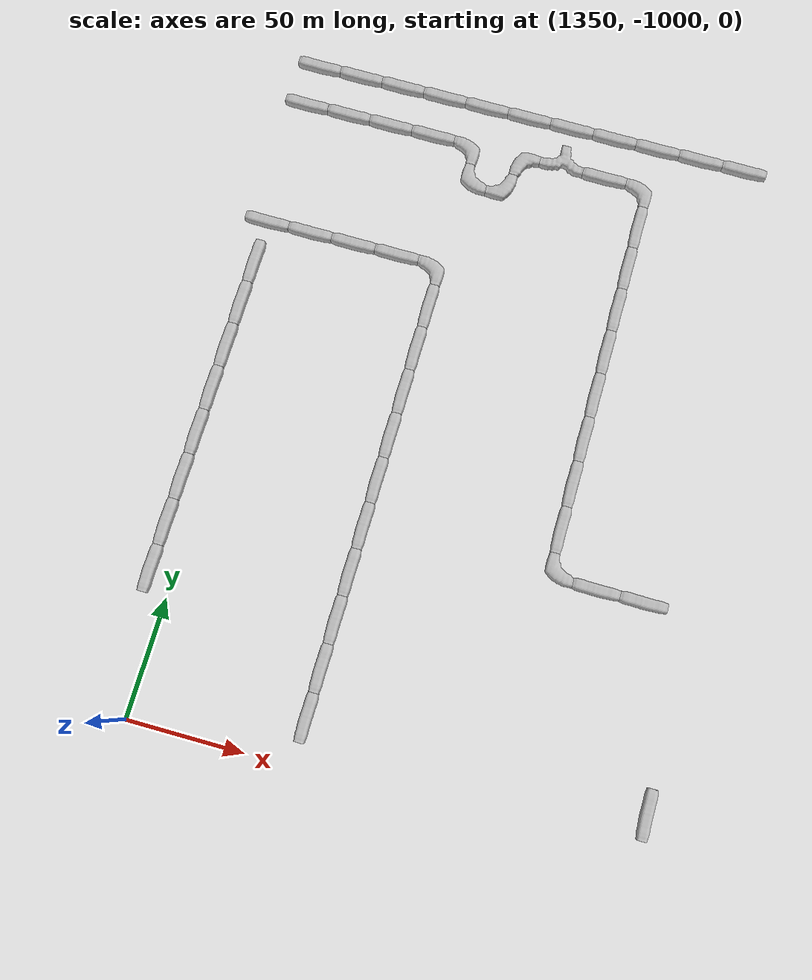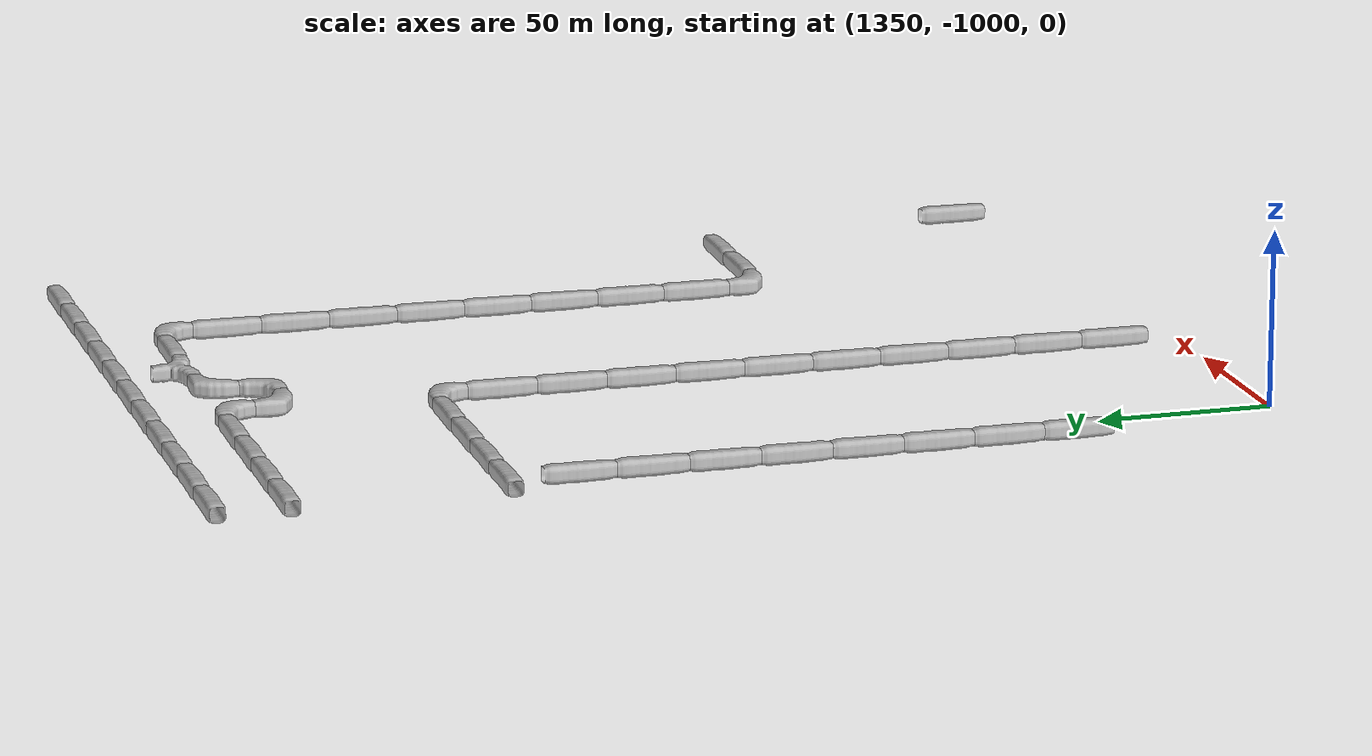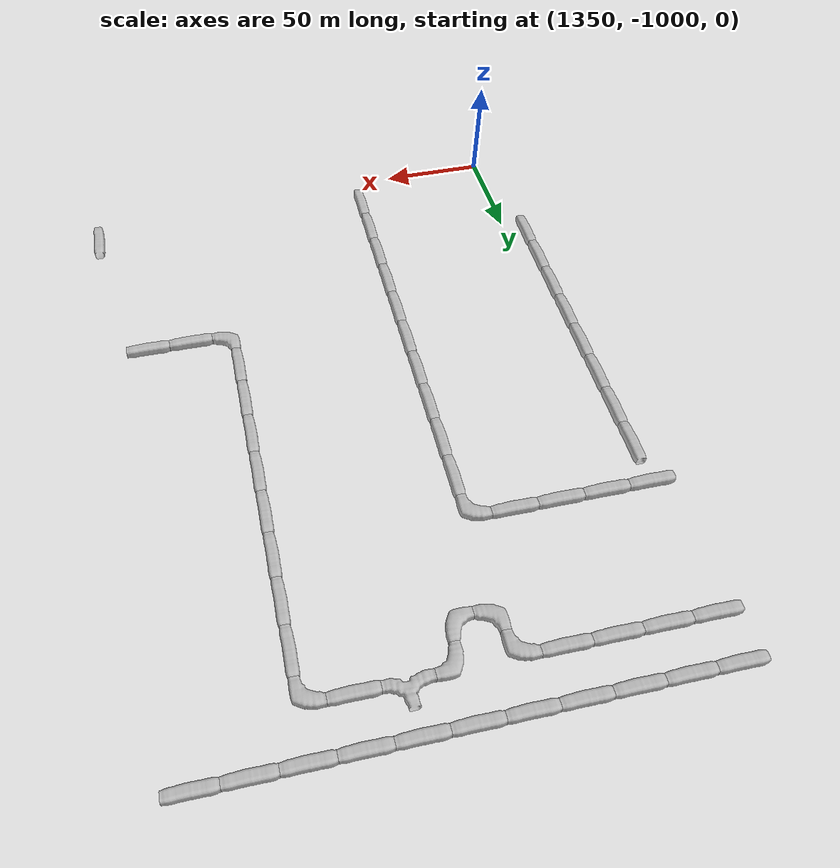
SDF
<sdf version="1.6">
 <world name="cave_32000_32">
  <include>
   <static>true</static>
   <name>cave_67_-36</name>
   <pose>1340 -720 0 0 0 1.5707963267948966</pose>
   <uri>model://cave_straight_20m</uri>
  </include>
  <include>
   <static>true</static>
   <name>cave_68_-36</name>
   <pose>1360 -720 0 0 0 1.5707963267948966</pose>
   <uri>model://cave_straight_20m</uri>
  </include>
  <include>
   <static>true</static>
   <name>cave_69_-36</name>
   <pose>1380 -720 0 0 0 1.5707963267948966</pose>
   <uri>model://cave_straight_20m</uri>
  </include>
  <include>
   <static>true</static>
   <name>cave_70_-36</name>
   <pose>1400 -720 0 0 0 1.5707963267948966</pose>
   <uri>model://cave_straight_20m</uri>
  </include>
  <include>
   <static>true</static>
   <name>cave_71_-36</name>
   <pose>1420 -720 0 0 0 3.141592653589793</pose>
   <uri>model://cave_L_20m</uri>
  </include>
  <include>
   <static>true</static>
   <name>cave_71_-37</name>
   <pose>1420 -740 0 0 0 0.0</pose>
   <uri>model://cave_L_20m</uri>
  </include>
  <include>
   <static>true</static>
   <name>cave_72_-37</name>
   <pose>1440 -740 0 0 0 1.5707963267948966</pose>
   <uri>model://cave_L_20m</uri>
  </include>
  <include>
   <static>true</static>
   <name>cave_72_-36</name>
   <pose>1440 -720 0 0 0 -1.5707963267948966</pose>
   <uri>model://cave_L_20m</uri>
  </include>
  <include>
   <static>true</static>
   <name>cave_73_-36</name>
   <pose>1460 -720 0 0 0 0.0</pose>
   <uri>model://cave_3way_20m</uri>
  </include>
  <include>
   <static>true</static>
   <name>cave_74_-36</name>
   <pose>1480 -720 0 0 0 1.5707963267948966</pose>
   <uri>model://cave_straight_20m</uri>
  </include>
  <include>
   <static>true</static>
   <name>cave_75_-36</name>
   <pose>1500 -720 0 0 0 3.141592653589793</pose>
   <uri>model://cave_L_20m</uri>
  </include>
  <include>
   <static>true</static>
   <name>cave_75_-37</name>
   <pose>1500 -740 0 0 0 0.0</pose>
   <uri>model://cave_straight_20m</uri>
  </include>
  <include>
   <static>true</static>
   <name>cave_75_-38</name>
   <pose>1500 -760 0 0 0 0.0</pose>
   <uri>model://cave_straight_20m</uri>
  </include>
  <include>
   <static>true</static>
   <name>cave_75_-39</name>
   <pose>1500 -780 0 0 0 0.0</pose>
   <uri>model://cave_straight_20m</uri>
  </include>
  <include>
   <static>true</static>
   <name>cave_75_-40</name>
   <pose>1500 -800 0 0 0 0.0</pose>
   <uri>model://cave_straight_20m</uri>
  </include>
  <include>
   <static>true</static>
   <name>cave_75_-41</name>
   <pose>1500 -820 0 0 0 0.0</pose>
   <uri>model://cave_straight_20m</uri>
  </include>
  <include>
   <static>true</static>
   <name>cave_75_-42</name>
   <pose>1500 -840 0 0 0 0.0</pose>
   <uri>model://cave_straight_20m</uri>
  </include>
  <include>
   <static>true</static>
   <name>cave_75_-43</name>
   <pose>1500 -860 0 0 0 0.0</pose>
   <uri>model://cave_straight_20m</uri>
  </include>
  <include>
   <static>true</static>
   <name>cave_75_-44</name>
   <pose>1500 -880 0 0 0 0.0</pose>
   <uri>model://cave_straight_20m</uri>
  </include>
  <include>
   <static>true</static>
   <name>cave_75_-45</name>
   <pose>1500 -900 0 0 0 0.0</pose>
   <uri>model://cave_L_20m</uri>
  </include>
  <include>
   <static>true</static>
   <name>cave_76_-45</name>
   <pose>1520 -900 0 0 0 1.5707963267948966</pose>
   <uri>model://cave_straight_20m</uri>
  </include>
  <include>
   <static>true</static>
   <name>cave_77_-45</name>
   <pose>1540 -900 0 0 0 1.5707963267948966</pose>
   <uri>model://cave_straight_20m</uri>
  </include>
  <include>
   <static>true</static>
   <name>cave_78_-49</name>
   <pose>1560 -980 0 0 0 0.0</pose>
   <uri>model://cave_straight_20m</uri>
  </include>
  <include>
   <static>true</static>
   <name>cave_67_-35</name>
   <pose>1340 -700 0 0 0 1.5707963267948966</pose>
   <uri>model://cave_straight_20m</uri>
  </include>
  <include>
   <static>true</static>
   <name>cave_68_-35</name>
   <pose>1360 -700 0 0 0 1.5707963267948966</pose>
   <uri>model://cave_straight_20m</uri>
  </include>
  <include>
   <static>true</static>
   <name>cave_69_-35</name>
   <pose>1380 -700 0 0 0 1.5707963267948966</pose>
   <uri>model://cave_straight_20m</uri>
  </include>
  <include>
   <static>true</static>
   <name>cave_70_-35</name>
   <pose>1400 -700 0 0 0 1.5707963267948966</pose>
   <uri>model://cave_straight_20m</uri>
  </include>
  <include>
   <static>true</static>
   <name>cave_71_-35</name>
   <pose>1420 -700 0 0 0 1.5707963267948966</pose>
   <uri>model://cave_straight_20m</uri>
  </include>
  <include>
   <static>true</static>
   <name>cave_72_-35</name>
   <pose>1440 -700 0 0 0 1.5707963267948966</pose>
   <uri>model://cave_straight_20m</uri>
  </include>
  <include>
   <static>true</static>
   <name>cave_73_-35</name>
   <pose>1460 -700 0 0 0 1.5707963267948966</pose>
   <uri>model://cave_straight_20m</uri>
  </include>
  <include>
   <static>true</static>
   <name>cave_74_-35</name>
   <pose>1480 -700 0 0 0 1.5707963267948966</pose>
   <uri>model://cave_straight_20m</uri>
  </include>
  <include>
   <static>true</static>
   <name>cave_75_-35</name>
   <pose>1500 -700 0 0 0 1.5707963267948966</pose>
   <uri>model://cave_straight_20m</uri>
  </include>
  <include>
   <static>true</static>
   <name>cave_76_-35</name>
   <pose>1520 -700 0 0 0 1.5707963267948966</pose>
   <uri>model://cave_straight_20m</uri>
  </include>
  <include>
   <static>true</static>
   <name>cave_77_-35</name>
   <pose>1540 -700 0 0 0 1.5707963267948966</pose>
   <uri>model://cave_straight_20m</uri>
  </include>
  <include>
   <static>true</static>
   <name>cave_67_-39</name>
   <pose>1340 -780 0 0 0 1.5707963267948966</pose>
   <uri>model://cave_straight_20m</uri>
  </include>
  <include>
   <static>true</static>
   <name>cave_68_-39</name>
   <pose>1360 -780 0 0 0 1.5707963267948966</pose>
   <uri>model://cave_straight_20m</uri>
  </include>
  <include>
   <static>true</static>
   <name>cave_69_-39</name>
   <pose>1380 -780 0 0 0 1.5707963267948966</pose>
   <uri>model://cave_straight_20m</uri>
  </include>
  <include>
   <static>true</static>
   <name>cave_70_-39</name>
   <pose>1400 -780 0 0 0 1.5707963267948966</pose>
   <uri>model://cave_straight_20m</uri>
  </include>
  <include>
   <static>true</static>
   <name>cave_71_-39</name>
   <pose>1420 -780 0 0 0 3.141592653589793</pose>
   <uri>model://cave_L_20m</uri>
  </include>
  <include>
   <static>true</static>
   <name>cave_71_-40</name>
   <pose>1420 -800 0 0 0 0.0</pose>
   <uri>model://cave_straight_20m</uri>
  </include>
  <include>
   <static>true</static>
   <name>cave_71_-41</name>
   <pose>1420 -820 0 0 0 0.0</pose>
   <uri>model://cave_straight_20m</uri>
  </include>
  <include>
   <static>true</static>
   <name>cave_71_-42</name>
   <pose>1420 -840 0 0 0 0.0</pose>
   <uri>model://cave_straight_20m</uri>
  </include>
  <include>
   <static>true</static>
   <name>cave_71_-43</name>
   <pose>1420 -860 0 0 0 0.0</pose>
   <uri>model://cave_straight_20m</uri>
  </include>
  <include>
   <static>true</static>
   <name>cave_71_-44</name>
   <pose>1420 -880 0 0 0 0.0</pose>
   <uri>model://cave_straight_20m</uri>
  </include>
  <include>
   <static>true</static>
   <name>cave_71_-45</name>
   <pose>1420 -900 0 0 0 0.0</pose>
   <uri>model://cave_straight_20m</uri>
  </include>
  <include>
   <static>true</static>
   <name>cave_71_-46</name>
   <pose>1420 -920 0 0 0 0.0</pose>
   <uri>model://cave_straight_20m</uri>
  </include>
  <include>
   <static>true</static>
   <name>cave_71_-47</name>
   <pose>1420 -940 0 0 0 0.0</pose>
   <uri>model://cave_straight_20m</uri>
  </include>
  <include>
   <static>true</static>
   <name>cave_71_-48</name>
   <pose>1420 -960 0 0 0 0.0</pose>
   <uri>model://cave_straight_20m</uri>
  </include>
  <include>
   <static>true</static>
   <name>cave_71_-49</name>
   <pose>1420 -980 0 0 0 0.0</pose>
   <uri>model://cave_straight_20m</uri>
  </include>
  <include>
   <static>true</static>
   <name>cave_67_-47</name>
   <pose>1340 -940 0 0 0 0.0</pose>
   <uri>model://cave_straight_20m</uri>
  </include>
  <include>
   <static>true</static>
   <name>cave_67_-46</name>
   <pose>1340 -920 0 0 0 0.0</pose>
   <uri>model://cave_straight_20m</uri>
  </include>
  <include>
   <static>true</static>
   <name>cave_67_-45</name>
   <pose>1340 -900 0 0 0 0.0</pose>
   <uri>model://cave_straight_20m</uri>
  </include>
  <include>
   <static>true</static>
   <name>cave_67_-44</name>
   <pose>1340 -880 0 0 0 0.0</pose>
   <uri>model://cave_straight_20m</uri>
  </include>
  <include>
   <static>true</static>
   <name>cave_67_-43</name>
   <pose>1340 -860 0 0 0 0.0</pose>
   <uri>model://cave_straight_20m</uri>
  </include>
  <include>
   <static>true</static>
   <name>cave_67_-42</name>
   <pose>1340 -840 0 0 0 0.0</pose>
   <uri>model://cave_straight_20m</uri>
  </include>
  <include>
   <static>true</static>
   <name>cave_67_-41</name>
   <pose>1340 -820 0 0 0 0.0</pose>
   <uri>model://cave_straight_20m</uri>
  </include>
  <include>
   <static>true</static>
   <name>cave_67_-40</name>
   <pose>1340 -800 0 0 0 0.0</pose>
   <uri>model://cave_straight_20m</uri>
  </include>
 </world>
</sdf>
